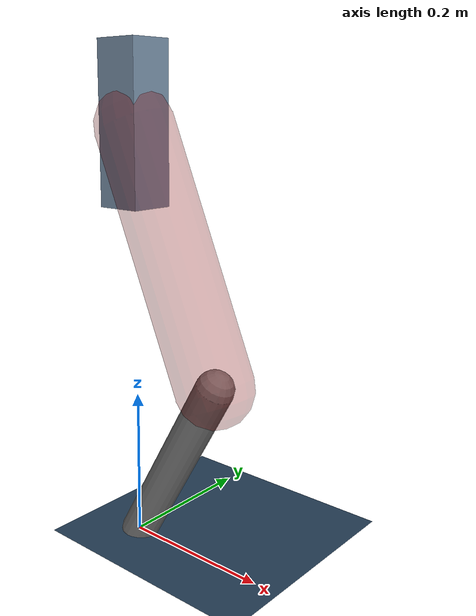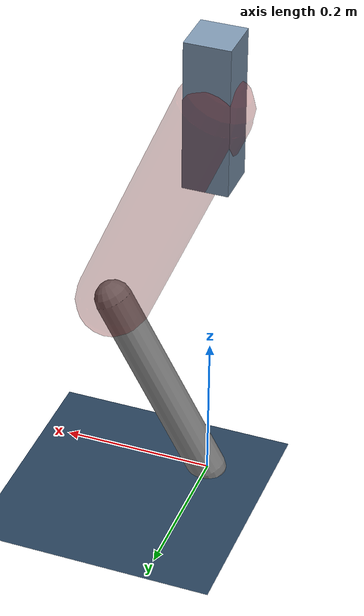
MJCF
<mujoco model="Hopper2D">
	<compiler inertiafromgeom="true" angle="radian" />
	<option timestep="0.001" integrator="implicit" cone="elliptic" solver="Newton" tolerance="1e-10" />

	<default>
		<geom contype="1" conaffinity="1" condim="3" friction="2 0.005 0.0001" solref="0.005 1" />
		<joint limited="true" damping="0.1" />
	</default>

	<asset>
		<texture name="skybox" type="skybox" builtin="gradient" rgb1=".4 .6 .8" rgb2="0 0 0" width="800" height="800" />
		<texture name="grid" type="2d" builtin="checker" rgb1=".1 .2 .3" rgb2=".2 .3 .4" width="300" height="300" mark="edge" markrgb=".2 .3 .4" />
		<material name="ground" texture="grid" texrepeat="1 1" texuniform="true" reflectance="0.1" />
		<material name="leg" rgba="0.5 0.6 0.7 1" />
	</asset>

	<worldbody>

		<geom name="floor" type="plane" size="5 5 0.25" material="ground" />

		<light directional="false" diffuse="0.8 0.8 0.8" specular="0.3 0.3 0.3" pos="0 0 2" dir="0 0 -1" />
		<light mode="targetbodycom" target="base" directional="false" diffuse="0.8 0.8 0.8" specular="0.3 0.3 0.3" pos="0 0 2" dir="0 0 -1" />

		<camera name="fixed" pos="0 -2 1" xyaxes="1 0 0 0 0 1" />
		<camera name="tracking" mode="trackcom" pos="0 -3 1" />

		<body name="root" pos="0 0 0.5511577946480194">
			<joint name="slide_x" type="slide" axis="1 0 0" range="-100 100" />
			<joint name="slide_z" type="slide" axis="0 0 1" range="0 10" />

			<body name="base" pos="0 0 0">
				<geom name="torso" type="box" size="0.03 0.03 0.1" mass="1.838" material="leg" />

				<body name="link1" pos="0 0 0" euler="0 1.1663122161147585 0">
					<joint type="hinge" axis="0 -1 0" pos="0 0 0" name="hinge1" limited="true" range="-3.14 3.14" stiffness="0" damping="0.1" />
					<geom name="thigh" type="capsule" fromto="0 0 0 0.33788179911812083 0 0" size="0.05" rgba="0.5 0 0 0.3" mass="1.0927690375307382" />

					<body name="link2" pos="0.33788179911812083 0 0" euler="0 0.9094756873277218 0">
						<joint type="hinge" axis="0 -1 0" pos="0 0 0" name="hinge2" limited="true" range="-3.14 3.14" stiffness="0" damping="0.1" />
						<geom name="shank" type="capsule" fromto="0 0 0 0.27484812473966413 0 0" size="0.025" mass="0.4628784997917313" />

					</body>
				</body>
			</body>
		</body>
	</worldbody>

	<actuator>
		<motor name="torque1" joint="hinge1" ctrlrange="-47.066733973890635 47.066733973890635" ctrllimited="true" gear="1" />
		<motor name="torque2" joint="hinge2" ctrlrange="-82.81071016845999 82.81071016845999" ctrllimited="true" gear="1" />
	</actuator>
</mujoco>
